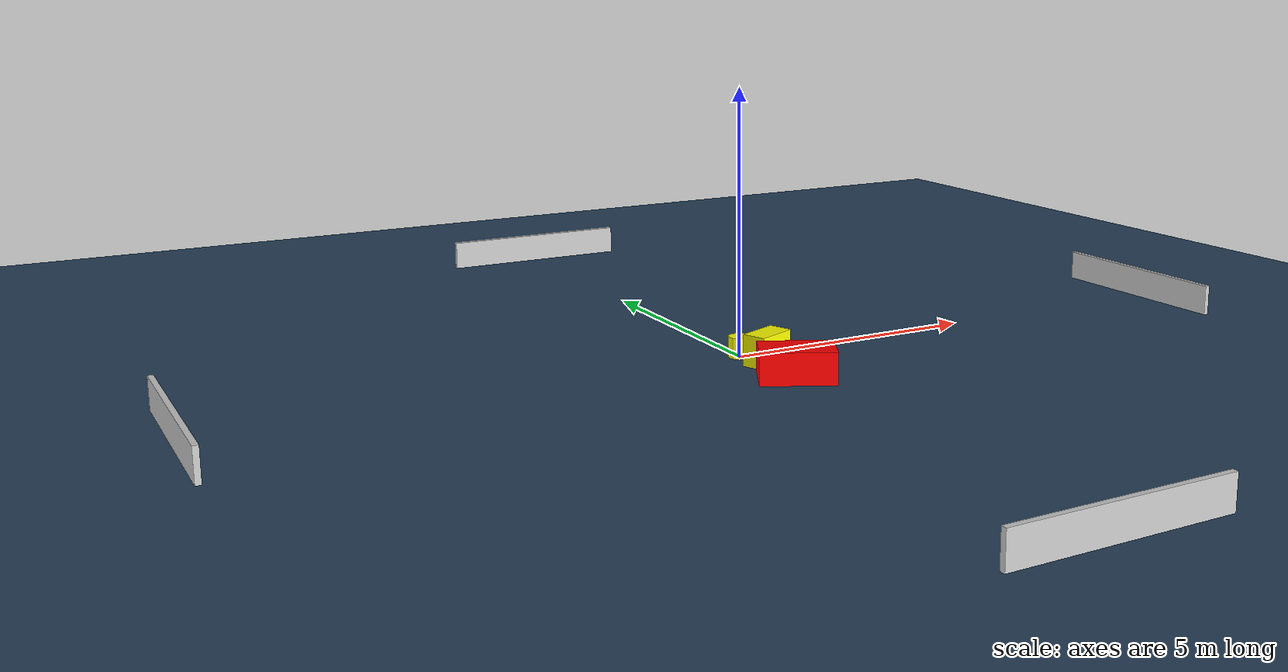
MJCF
<?xml version="1.0" ?>
<mujoco model="generated_environment">
  <option timestep="0.01" integrator="RK4" cone="elliptic"/>
  <default>
    <geom density="1"/>
  </default>
  <asset>
    <texture builtin="gradient" height="3072" name="skybox" rgb1="0.3 0.5 0.7" rgb2="0 0 0" type="skybox" width="512"/>
    <texture builtin="checker" height="300" name="groundplane" rgb1="0.2 0.3 0.4" rgb2="0.1 0.2 0.3" type="2d" width="300"/>
    <material name="groundplane" reflectance="0.2" texrepeat="5 5" texture="groundplane"/>
  </asset>
  <worldbody>
    <light dir="0 0 -1" directional="true" pos="0 0 1.5"/>
    <geom condim="3" friction="0.5 0.005 0.001" material="groundplane" name="floor" pos="0 0 0" size="0 0 0.05" type="plane"/>
    <body name="walls">
      <geom name="wall_1" condim="4" pos="-10.0 0.0 0.3" rgba="0.800000011920929 0.800000011920929 0.800000011920929 1.0" size="0.05 2.0 0.3" type="box"/>
      <geom name="wall_2" condim="4" pos="10.0 0.0 0.3" rgba="0.800000011920929 0.800000011920929 0.800000011920929 1.0" size="0.05 2.0 0.3" type="box"/>
      <geom name="wall_3" condim="4" pos="0.0 -10.0 0.3" rgba="0.800000011920929 0.800000011920929 0.800000011920929 1.0" size="2.0 0.05 0.3" type="box"/>
      <geom name="wall_4" condim="4" pos="0.0 10.0 0.3" rgba="0.800000011920929 0.800000011920929 0.800000011920929 1.0" size="2.0 0.05 0.3" type="box"/>
    </body>
    <body name="robot">
      <joint name="joint_x" type="slide" pos="0 0 0" axis="1 0 0"/>
      <joint name="joint_y" type="slide" pos="0 0 0" axis="0 1 0"/>
      <geom name="robot" type="cylinder" pos="0.0 0.0 0.2" size="0.2 0.2 0.0" mass="5.0" friction="1.0 0.005 0.0001" condim="4" rgba="1.0 1.0 0.0 1.0"/>
    </body>
    <body name="obstacle_1_movable">
      <geom name="obstacle_1_movable" condim="4" pos="0.21787415380587452 -0.6450771523866425 0.3" euler="0 0 292.17904229528483" friction="0.0 0.005 0.001" rgba="1.0 1.0 0.0 1.0" size="0.2331411848155442 0.4083606010498548 0.3" type="box" mass="0.1"/>
      <joint type="free"/>
    </body>
    <body name="obstacle_2_static">
      <geom name="obstacle_2_static" condim="4" pos="0.1624399423907871 -1.7680496820703175 0.3" euler="0 0 333.0357963903622" friction="0.0 0.005 0.001" rgba="1.0 0.0 0.0 1.0" size="0.689631581644516 0.41231357861491186 0.3" type="box"/>
    </body>
  </worldbody>
  <actuator>
    <motor name="actuator_x" joint="joint_x" gear="1" ctrlrange="-1 1"/>
    <motor name="actuator_y" joint="joint_y" gear="1" ctrlrange="-1 1"/>
  </actuator>
</mujoco>
